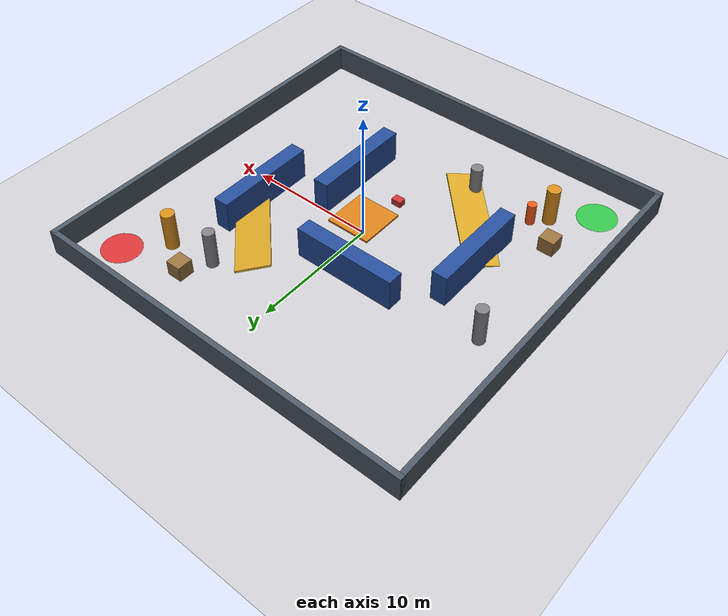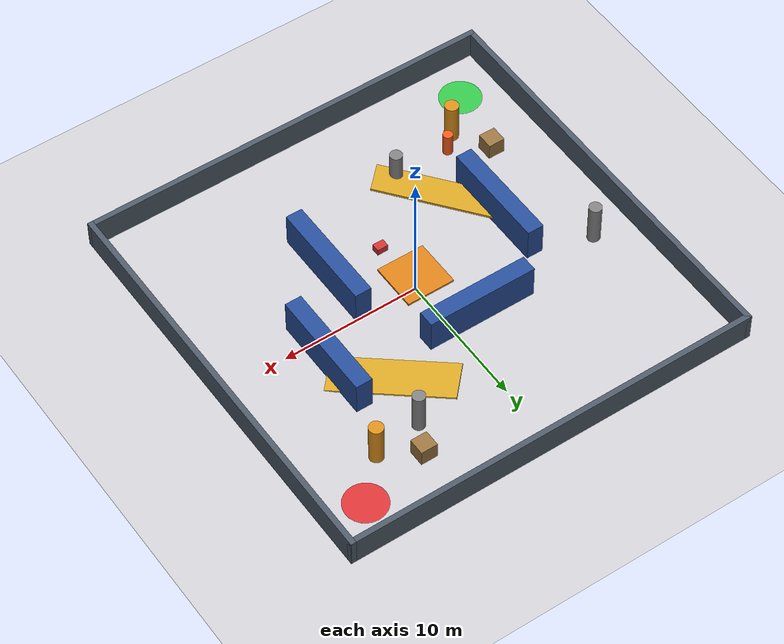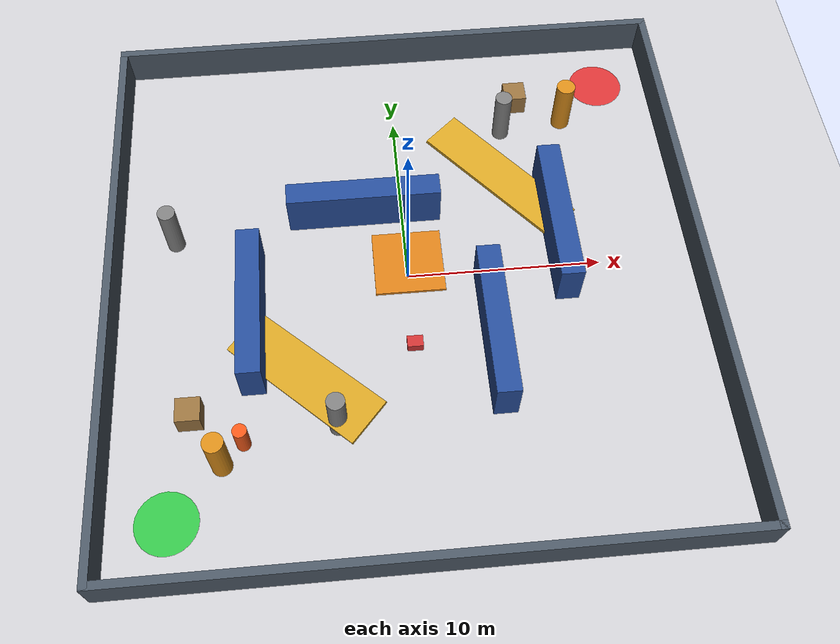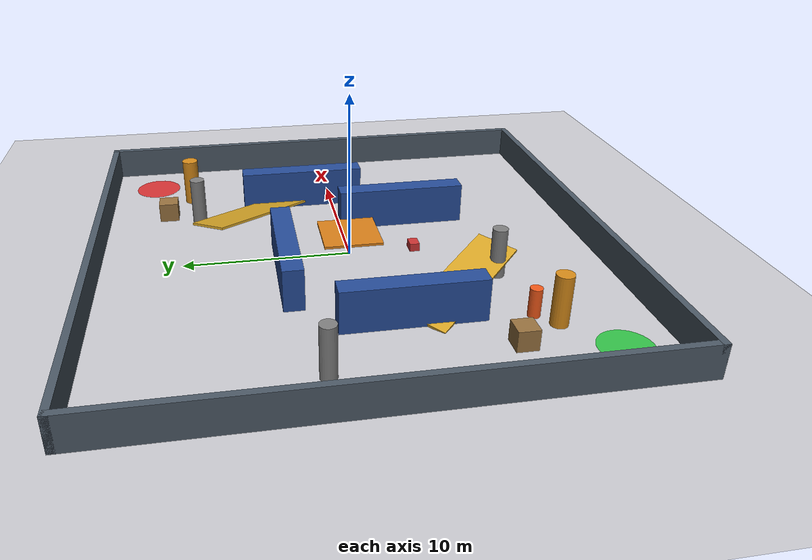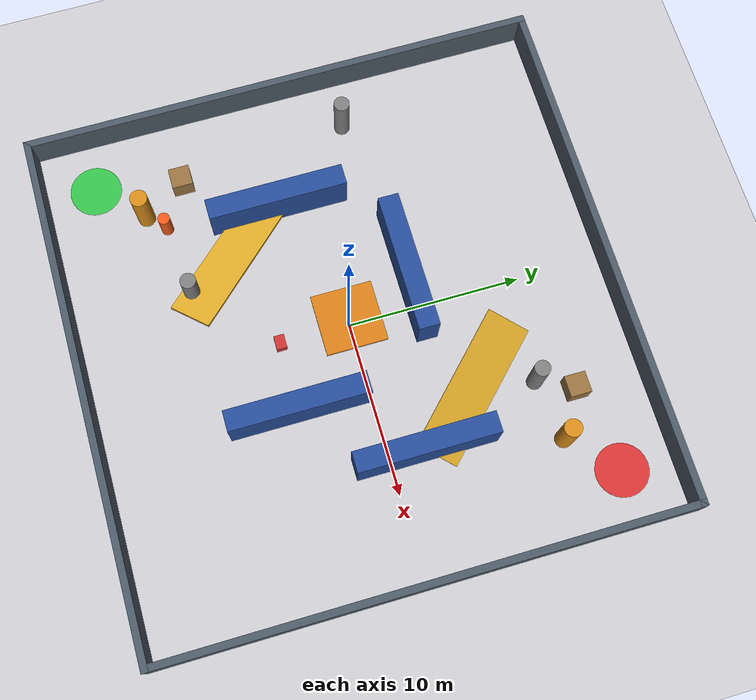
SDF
<?xml version="1.0" ?>
<sdf version="1.8">
  <world name="navigrid_arena">
    <!-- Physics Configuration -->
    <physics name="1ms" type="ignored">
      <max_step_size>0.002</max_step_size>
      <real_time_factor>1.0</real_time_factor>
    </physics>

    <!-- Essential Simulation Plugins -->
    <plugin filename="gz-sim-physics-system" name="gz::sim::systems::Physics"/>
    <plugin filename="gz-sim-user-commands-system" name="gz::sim::systems::UserCommands"/>
    <plugin filename="gz-sim-scene-broadcaster-system" name="gz::sim::systems::SceneBroadcaster"/>
    <plugin filename="gz-sim-sensors-system" name="gz::sim::systems::Sensors">
      <render_engine>ogre2</render_engine>
    </plugin>
    <plugin filename="gz-sim-imu-system" name="gz::sim::systems::Imu"/>

    <!-- Ambient Lighting & Sun -->
    <light type="directional" name="sun">
      <cast_shadows>true</cast_shadows>
      <pose>0 0 30 0 0 0</pose>
      <diffuse>0.85 0.85 0.85 1</diffuse>
      <specular>0.2 0.2 0.2 1</specular>
      <direction>-0.5 0.1 -0.9</direction>
    </light>

    <!-- Ground Plane (30m x 30m Arena Floor) -->
    <model name="ground_plane">
      <static>true</static>
      <link name="floor_link">
        <collision name="collision">
          <geometry>
            <plane>
              <normal>0 0 1</normal>
              <size>30 30</size>
            </plane>
          </geometry>
          <surface>
            <friction>
              <ode>
                <mu>1.0</mu>
                <mu2>1.0</mu2>
              </ode>
            </friction>
          </surface>
        </collision>
        <visual name="visual">
          <geometry>
            <plane>
              <normal>0 0 1</normal>
              <size>30 30</size>
            </plane>
          </geometry>
          <material>
            <ambient>0.8 0.8 0.82 1</ambient>
            <diffuse>0.8 0.8 0.82 1</diffuse>
          </material>
        </visual>
      </link>
    </model>

    <!-- Perimeter LIDAR-Reflective Boundary Walls (30m x 30m Footprint) -->
    <!-- North Wall -->
    <model name="wall_north">
      <static>true</static>
      <pose>0 15 1.0 0 0 0</pose>
      <link name="link">
        <collision name="collision">
          <geometry><box><size>30.4 0.4 2.0</size></box></geometry>
        </collision>
        <visual name="visual">
          <geometry><box><size>30.4 0.4 2.0</size></box></geometry>
          <material><ambient>0.3 0.35 0.4 1</ambient><diffuse>0.3 0.35 0.4 1</diffuse></material>
        </visual>
      </link>
    </model>

    <!-- South Wall -->
    <model name="wall_south">
      <static>true</static>
      <pose>0 -15 1.0 0 0 0</pose>
      <link name="link">
        <collision name="collision">
          <geometry><box><size>30.4 0.4 2.0</size></box></geometry>
        </collision>
        <visual name="visual">
          <geometry><box><size>30.4 0.4 2.0</size></box></geometry>
          <material><ambient>0.3 0.35 0.4 1</ambient><diffuse>0.3 0.35 0.4 1</diffuse></material>
        </visual>
      </link>
    </model>

    <!-- East Wall -->
    <model name="wall_east">
      <static>true</static>
      <pose>15 0 1.0 0 0 0</pose>
      <link name="link">
        <collision name="collision">
          <geometry><box><size>0.4 30.4 2.0</size></box></geometry>
        </collision>
        <visual name="visual">
          <geometry><box><size>0.4 30.4 2.0</size></box></geometry>
          <material><ambient>0.3 0.35 0.4 1</ambient><diffuse>0.3 0.35 0.4 1</diffuse></material>
        </visual>
      </link>
    </model>

    <!-- West Wall -->
    <model name="wall_west">
      <static>true</static>
      <pose>-15 0 1.0 0 0 0</pose>
      <link name="link">
        <collision name="collision">
          <geometry><box><size>0.4 30.4 2.0</size></box></geometry>
        </collision>
        <visual name="visual">
          <geometry><box><size>0.4 30.4 2.0</size></box></geometry>
          <material><ambient>0.3 0.35 0.4 1</ambient><diffuse>0.3 0.35 0.4 1</diffuse></material>
        </visual>
      </link>
    </model>

    <!-- Start Zone (A) Marker -->
    <model name="zone_a_marker">
      <static>true</static>
      <pose>-12 -12 0.005 0 0 0</pose>
      <link name="link">
        <visual name="visual">
          <geometry><cylinder><radius>1.5</radius><length>0.01</length></cylinder></geometry>
          <material><ambient>0.1 0.8 0.2 0.8</ambient><diffuse>0.1 0.8 0.2 0.8</diffuse></material>
        </visual>
      </link>
    </model>

    <!-- Goal Zone (B) Marker -->
    <model name="zone_b_marker">
      <static>true</static>
      <pose>12 12 0.005 0 0 0</pose>
      <link name="link">
        <visual name="visual">
          <geometry><cylinder><radius>1.5</radius><length>0.01</length></cylinder></geometry>
          <material><ambient>0.9 0.1 0.1 0.8</ambient><diffuse>0.9 0.1 0.1 0.8</diffuse></material>
        </visual>
      </link>
    </model>

    <!-- DUAL-PATH TOPOLOGY 1: Direct Incline Ramp (3D)  -->
    <!-- Connects Start region diagonally to Goal summit -->
    <!-- Ascending Ramp from (-9, -9) to (-2, -2) -->
    <model name="incline_ramp_up">
      <static>true</static>
      <!-- Angle ~ 11.3 degrees (0.2 rad), rising to 1.4m height -->
      <pose>-5.5 -5.5 0.7 0.141 -0.141 -0.785</pose>
      <link name="link">
        <collision name="collision">
          <geometry><box><size>8.5 2.5 0.15</size></box></geometry>
          <surface><friction><ode><mu>1.2</mu><mu2>1.2</mu2></ode></friction></surface>
        </collision>
        <visual name="visual">
          <geometry><box><size>8.5 2.5 0.15</size></box></geometry>
          <material><ambient>0.85 0.65 0.15 1</ambient><diffuse>0.85 0.65 0.15 1</diffuse></material>
        </visual>
      </link>
    </model>

    <!-- Elevated Summit Platform at (0, 0, 1.4) -->
    <model name="ramp_summit_platform">
      <static>true</static>
      <pose>0 0 1.4 0 0 0</pose>
      <link name="link">
        <collision name="collision">
          <geometry><box><size>3.5 3.5 0.15</size></box></geometry>
        </collision>
        <visual name="visual">
          <geometry><box><size>3.5 3.5 0.15</size></box></geometry>
          <material><ambient>0.85 0.5 0.1 1</ambient><diffuse>0.85 0.5 0.1 1</diffuse></material>
        </visual>
      </link>
    </model>

    <!-- Descending Ramp from (2, 2) to (9, 9) -->
    <model name="incline_ramp_down">
      <static>true</static>
      <pose>5.5 5.5 0.7 -0.141 0.141 -0.785</pose>
      <link name="link">
        <collision name="collision">
          <geometry><box><size>8.5 2.5 0.15</size></box></geometry>
          <surface><friction><ode><mu>1.2</mu><mu2>1.2</mu2></ode></friction></surface>
        </collision>
        <visual name="visual">
          <geometry><box><size>8.5 2.5 0.15</size></box></geometry>
          <material><ambient>0.85 0.65 0.15 1</ambient><diffuse>0.85 0.65 0.15 1</diffuse></material>
        </visual>
      </link>
    </model>

    <!-- DUAL-PATH TOPOLOGY 2: Zig-Zag Ground Floor      -->
    <!-- Static Obstacles: Storage Racks, Pillars & Walls -->
    <!-- Storage Rack 1 (divides diagonal from zig-zag corridor) -->
    <model name="warehouse_rack_1">
      <static>true</static>
      <pose>-8 -2 1.25 0 0 0</pose>
      <link name="link">
        <collision name="collision">
          <geometry><box><size>1.2 8.0 2.5</size></box></geometry>
        </collision>
        <visual name="visual">
          <geometry><box><size>1.2 8.0 2.5</size></box></geometry>
          <material><ambient>0.15 0.3 0.6 1</ambient><diffuse>0.15 0.3 0.6 1</diffuse></material>
        </visual>
      </link>
    </model>

    <!-- Storage Rack 2 (creates zig-zag chicane) -->
    <model name="warehouse_rack_2">
      <static>true</static>
      <pose>-2 4 1.25 0 0 0</pose>
      <link name="link">
        <collision name="collision">
          <geometry><box><size>8.0 1.2 2.5</size></box></geometry>
        </collision>
        <visual name="visual">
          <geometry><box><size>8.0 1.2 2.5</size></box></geometry>
          <material><ambient>0.15 0.3 0.6 1</ambient><diffuse>0.15 0.3 0.6 1</diffuse></material>
        </visual>
      </link>
    </model>

    <!-- Storage Rack 3 (guides ground path around east side) -->
    <model name="warehouse_rack_3">
      <static>true</static>
      <pose>4 -4 1.25 0 0 0</pose>
      <link name="link">
        <collision name="collision">
          <geometry><box><size>1.2 8.0 2.5</size></box></geometry>
        </collision>
        <visual name="visual">
          <geometry><box><size>1.2 8.0 2.5</size></box></geometry>
          <material><ambient>0.15 0.3 0.6 1</ambient><diffuse>0.15 0.3 0.6 1</diffuse></material>
        </visual>
      </link>
    </model>

    <!-- Storage Rack 4 (corridor near goal zone) -->
    <model name="warehouse_rack_4">
      <static>true</static>
      <pose>8 2 1.25 0 0 0</pose>
      <link name="link">
        <collision name="collision">
          <geometry><box><size>1.2 8.0 2.5</size></box></geometry>
        </collision>
        <visual name="visual">
          <geometry><box><size>1.2 8.0 2.5</size></box></geometry>
          <material><ambient>0.15 0.3 0.6 1</ambient><diffuse>0.15 0.3 0.6 1</diffuse></material>
        </visual>
      </link>
    </model>

    <!-- Structural Pillars (Narrow chokepoints) -->
    <model name="pillar_1">
      <static>true</static>
      <pose>-12 3 1.5 0 0 0</pose>
      <link name="link">
        <collision name="collision"><geometry><cylinder><radius>0.45</radius><length>3.0</length></cylinder></geometry></collision>
        <visual name="visual"><geometry><cylinder><radius>0.45</radius><length>3.0</length></cylinder></geometry><material><ambient>0.5 0.5 0.5 1</ambient></material></visual>
      </link>
    </model>

    <model name="pillar_2">
      <static>true</static>
      <pose>-4 -8 1.5 0 0 0</pose>
      <link name="link">
        <collision name="collision"><geometry><cylinder><radius>0.45</radius><length>3.0</length></cylinder></geometry></collision>
        <visual name="visual"><geometry><cylinder><radius>0.45</radius><length>3.0</length></cylinder></geometry><material><ambient>0.5 0.5 0.5 1</ambient></material></visual>
      </link>
    </model>

    <model name="pillar_3">
      <static>true</static>
      <pose>6 9 1.5 0 0 0</pose>
      <link name="link">
        <collision name="collision"><geometry><cylinder><radius>0.45</radius><length>3.0</length></cylinder></geometry></collision>
        <visual name="visual"><geometry><cylinder><radius>0.45</radius><length>3.0</length></cylinder></geometry><material><ambient>0.5 0.5 0.5 1</ambient></material></visual>
      </link>
    </model>

    <!-- Diagonal Chicane Obstacles: Breaks straight-line motion into realistic navigation -->
    <model name="pillar_diagonal_1">
      <static>true</static>
      <pose>-9.5 -9.5 1.5 0 0 0</pose>
      <link name="link">
        <collision name="collision"><geometry><cylinder><radius>0.50</radius><length>3.0</length></cylinder></geometry></collision>
        <visual name="visual"><geometry><cylinder><radius>0.50</radius><length>3.0</length></cylinder></geometry><material><ambient>0.85 0.55 0.1 1</ambient><diffuse>0.85 0.55 0.1 1</diffuse></material></visual>
      </link>
    </model>

    <model name="pallet_stack_1">
      <static>true</static>
      <pose>-11.0 -7.0 0.6 0 0 0</pose>
      <link name="link">
        <collision name="collision"><geometry><box><size>1.2 1.2 1.2</size></box></geometry></collision>
        <visual name="visual"><geometry><box><size>1.2 1.2 1.2</size></box></geometry><material><ambient>0.6 0.45 0.25 1</ambient><diffuse>0.6 0.45 0.25 1</diffuse></material></visual>
      </link>
    </model>

    <model name="pillar_diagonal_2">
      <static>true</static>
      <pose>9.5 9.5 1.5 0 0 0</pose>
      <link name="link">
        <collision name="collision"><geometry><cylinder><radius>0.50</radius><length>3.0</length></cylinder></geometry></collision>
        <visual name="visual"><geometry><cylinder><radius>0.50</radius><length>3.0</length></cylinder></geometry><material><ambient>0.85 0.55 0.1 1</ambient><diffuse>0.85 0.55 0.1 1</diffuse></material></visual>
      </link>
    </model>

    <model name="pallet_stack_2">
      <static>true</static>
      <pose>7.0 11.0 0.6 0 0 0</pose>
      <link name="link">
        <collision name="collision"><geometry><box><size>1.2 1.2 1.2</size></box></geometry></collision>
        <visual name="visual"><geometry><box><size>1.2 1.2 1.2</size></box></geometry><material><ambient>0.6 0.45 0.25 1</ambient><diffuse>0.6 0.45 0.25 1</diffuse></material></visual>
      </link>
    </model>

    <!-- DYNAMIC AGENTS: Crossing Pedestrian & AMR       -->
    <!-- Dynamic Pedestrian Model crossing the primary robot travel path -->
    <model name="pedestrian_crossing">
      <pose>-8.5 -8.5 0.85 0 0 0</pose>
      <link name="ped_link">
        <gravity>false</gravity>
        <inertial>
          <mass>5.0</mass>
          <inertia>
            <ixx>1.0</ixx><ixy>0</ixy><ixz>0</ixz>
            <iyy>1.0</iyy><iyz>0</iyz>
            <izz>1.0</izz>
          </inertia>
        </inertial>
        <collision name="collision">
          <geometry>
            <cylinder><radius>0.35</radius><length>1.7</length></cylinder>
          </geometry>
        </collision>
        <visual name="visual">
          <geometry>
            <cylinder><radius>0.35</radius><length>1.7</length></cylinder>
          </geometry>
          <material>
            <ambient>0.95 0.35 0.1 1</ambient>
            <diffuse>0.95 0.35 0.1 1</diffuse>
          </material>
        </visual>
      </link>
      <plugin
        filename="gz-sim-trajectory-follower-system"
        name="gz::sim::systems::TrajectoryFollower">
        <link_name>ped_link</link_name>
        <loop>true</loop>
        <force>50</force>
        <torque>50</torque>
        <waypoints>
          <waypoint>-10.5 -6.5</waypoint>
          <waypoint>-6.5 -10.5</waypoint>
        </waypoints>
      </plugin>
    </model>

    <!-- Dynamic Secondary Cross-Traffic AMR crossing ground corridor -->
    <model name="cross_traffic_amr">
      <pose>0 -4 0.25 0 0 0</pose>
      <link name="amr_link">
        <gravity>false</gravity>
        <inertial>
          <mass>5.0</mass>
          <inertia>
            <ixx>1.0</ixx><ixy>0</ixy><ixz>0</ixz>
            <iyy>1.0</iyy><iyz>0</iyz>
            <izz>1.0</izz>
          </inertia>
        </inertial>
        <collision name="collision">
          <geometry>
            <box><size>0.8 0.6 0.5</size></box>
          </geometry>
        </collision>
        <visual name="visual">
          <geometry>
            <box><size>0.8 0.6 0.5</size></box>
          </geometry>
          <material>
            <ambient>0.8 0.2 0.2 1</ambient>
            <diffuse>0.8 0.2 0.2 1</diffuse>
          </material>
        </visual>
      </link>
      <plugin
        filename="gz-sim-trajectory-follower-system"
        name="gz::sim::systems::TrajectoryFollower">
        <link_name>amr_link</link_name>
        <loop>true</loop>
        <force>50</force>
        <torque>50</torque>
        <waypoints>
          <waypoint>-2.5 -4.0</waypoint>
          <waypoint>2.5 -4.0</waypoint>
        </waypoints>
      </plugin>
    </model>

  </world>
</sdf>
